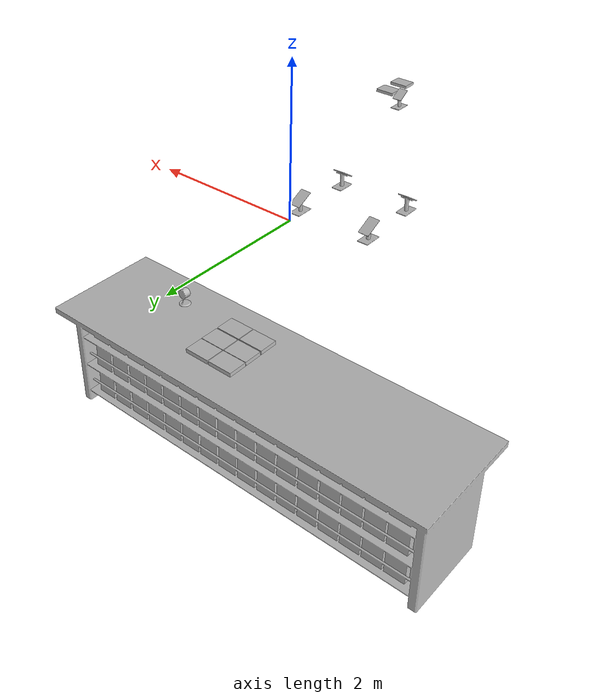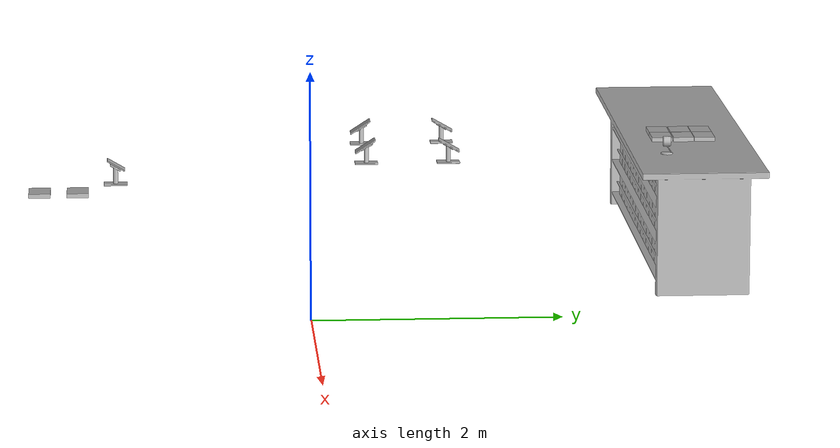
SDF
<sdf version="1.7">
 <world name="default">
  <model name="BookE_01_006">
   <frame name="aws_robomaker_retail_BookE_01::__model__" attached_to="aws_robomaker_retail_BookE_01::link">
    <pose relative_to="__model__">0 0 0 0 -0 0</pose>
   </frame>
   <link name="aws_robomaker_retail_BookE_01::link">
    <inertial>
     <mass>1</mass>
     <inertia><ixy>0</ixy><ixz>0</ixz><iyz>0</iyz><ixx>0.0666</ixx><iyy>0.0346</iyy><izz>0.0986</izz></inertia>
    </inertial>
    <collision name="collision">
     <geometry>
      <mesh>
       <uri>model://aws_robomaker_retail_BookE_01/meshes/aws_BookE_01_collision.DAE</uri>
       <scale>1 1 1</scale>
      </mesh>
     </geometry>
    </collision>
    <visual name="visual">
     <geometry>
      <mesh><uri>model://aws_robomaker_retail_BookE_01/meshes/aws_BookE_01_visual.DAE</uri></mesh>
     </geometry>
    </visual>
    <pose relative_to="aws_robomaker_retail_BookE_01::__model__">0 0 0 0 -0 0</pose>
   </link>
   <static>1</static>
   <pose>-1.88942 3.34639 1.05494 0 -0 1.56816</pose>
  </model>
  <model name="BookE_01_007">
   <frame name="aws_robomaker_retail_BookE_01::__model__" attached_to="aws_robomaker_retail_BookE_01::link">
    <pose relative_to="__model__">0 0 0 0 -0 0</pose>
   </frame>
   <link name="aws_robomaker_retail_BookE_01::link">
    <inertial>
     <mass>1</mass>
     <inertia><ixy>0</ixy><ixz>0</ixz><iyz>0</iyz><ixx>0.0666</ixx><iyy>0.0346</iyy><izz>0.0986</izz></inertia>
    </inertial>
    <collision name="collision">
     <geometry>
      <mesh>
       <uri>model://aws_robomaker_retail_BookE_01/meshes/aws_BookE_01_collision.DAE</uri>
       <scale>1 1 1</scale>
      </mesh>
     </geometry>
    </collision>
    <visual name="visual">
     <geometry>
      <mesh><uri>model://aws_robomaker_retail_BookE_01/meshes/aws_BookE_01_visual.DAE</uri></mesh>
     </geometry>
    </visual>
    <pose relative_to="aws_robomaker_retail_BookE_01::__model__">0 0 0 0 -0 0</pose>
   </link>
   <static>1</static>
   <pose>-2.12373 3.34639 1.05494 0 -0 1.56816</pose>
  </model>
  <model name="BookE_01_014">
   <frame name="aws_robomaker_retail_BookE_01::__model__" attached_to="aws_robomaker_retail_BookE_01::link">
    <pose relative_to="__model__">0 0 0 0 -0 0</pose>
   </frame>
   <link name="aws_robomaker_retail_BookE_01::link">
    <inertial>
     <mass>1</mass>
     <inertia><ixy>0</ixy><ixz>0</ixz><iyz>0</iyz><ixx>0.0666</ixx><iyy>0.0346</iyy><izz>0.0986</izz></inertia>
    </inertial>
    <collision name="collision">
     <geometry>
      <mesh>
       <uri>model://aws_robomaker_retail_BookE_01/meshes/aws_BookE_01_collision.DAE</uri>
       <scale>1 1 1</scale>
      </mesh>
     </geometry>
    </collision>
    <visual name="visual">
     <geometry>
      <mesh><uri>model://aws_robomaker_retail_BookE_01/meshes/aws_BookE_01_visual.DAE</uri></mesh>
     </geometry>
    </visual>
    <pose relative_to="aws_robomaker_retail_BookE_01::__model__">0 0 0 0 -0 0</pose>
   </link>
   <static>1</static>
   <pose>-1.88942 2.99369 1.05494 0 -0 1.56816</pose>
  </model>
  <model name="BookE_01_015">
   <frame name="aws_robomaker_retail_BookE_01::__model__" attached_to="aws_robomaker_retail_BookE_01::link">
    <pose relative_to="__model__">0 0 0 0 -0 0</pose>
   </frame>
   <link name="aws_robomaker_retail_BookE_01::link">
    <inertial>
     <mass>1</mass>
     <inertia><ixy>0</ixy><ixz>0</ixz><iyz>0</iyz><ixx>0.0666</ixx><iyy>0.0346</iyy><izz>0.0986</izz></inertia>
    </inertial>
    <collision name="collision">
     <geometry>
      <mesh>
       <uri>model://aws_robomaker_retail_BookE_01/meshes/aws_BookE_01_collision.DAE</uri>
       <scale>1 1 1</scale>
      </mesh>
     </geometry>
    </collision>
    <visual name="visual">
     <geometry>
      <mesh><uri>model://aws_robomaker_retail_BookE_01/meshes/aws_BookE_01_visual.DAE</uri></mesh>
     </geometry>
    </visual>
    <pose relative_to="aws_robomaker_retail_BookE_01::__model__">0 0 0 0 -0 0</pose>
   </link>
   <static>1</static>
   <pose>-2.12373 2.99369 1.05494 0 -0 1.56816</pose>
  </model>
  <model name="BookE_01_017">
   <frame name="aws_robomaker_retail_BookE_01::__model__" attached_to="aws_robomaker_retail_BookE_01::link">
    <pose relative_to="__model__">0 0 0 0 -0 0</pose>
   </frame>
   <link name="aws_robomaker_retail_BookE_01::link">
    <inertial>
     <mass>1</mass>
     <inertia><ixy>0</ixy><ixz>0</ixz><iyz>0</iyz><ixx>0.0666</ixx><iyy>0.0346</iyy><izz>0.0986</izz></inertia>
    </inertial>
    <collision name="collision">
     <geometry>
      <mesh>
       <uri>model://aws_robomaker_retail_BookE_01/meshes/aws_BookE_01_collision.DAE</uri>
       <scale>1 1 1</scale>
      </mesh>
     </geometry>
    </collision>
    <visual name="visual">
     <geometry>
      <mesh><uri>model://aws_robomaker_retail_BookE_01/meshes/aws_BookE_01_visual.DAE</uri></mesh>
     </geometry>
    </visual>
    <pose relative_to="aws_robomaker_retail_BookE_01::__model__">0 0 0 0 -0 0</pose>
   </link>
   <static>1</static>
   <pose>-1.88942 3.17292 1.05494 0 -0 1.56816</pose>
  </model>
  <model name="BookE_01_018">
   <frame name="aws_robomaker_retail_BookE_01::__model__" attached_to="aws_robomaker_retail_BookE_01::link">
    <pose relative_to="__model__">0 0 0 0 -0 0</pose>
   </frame>
   <link name="aws_robomaker_retail_BookE_01::link">
    <inertial>
     <mass>1</mass>
     <inertia><ixy>0</ixy><ixz>0</ixz><iyz>0</iyz><ixx>0.0666</ixx><iyy>0.0346</iyy><izz>0.0986</izz></inertia>
    </inertial>
    <collision name="collision">
     <geometry>
      <mesh>
       <uri>model://aws_robomaker_retail_BookE_01/meshes/aws_BookE_01_collision.DAE</uri>
       <scale>1 1 1</scale>
      </mesh>
     </geometry>
    </collision>
    <visual name="visual">
     <geometry>
      <mesh><uri>model://aws_robomaker_retail_BookE_01/meshes/aws_BookE_01_visual.DAE</uri></mesh>
     </geometry>
    </visual>
    <pose relative_to="aws_robomaker_retail_BookE_01::__model__">0 0 0 0 -0 0</pose>
   </link>
   <static>1</static>
   <pose>-2.12373 3.17292 1.05494 0 -0 1.56816</pose>
  </model>
  <model name="BookE_01_028">
   <frame name="aws_robomaker_retail_BookE_01::__model__" attached_to="aws_robomaker_retail_BookE_01::link">
    <pose relative_to="__model__">0 0 0 0 -0 0</pose>
   </frame>
   <link name="aws_robomaker_retail_BookE_01::link">
    <inertial>
     <mass>1</mass>
     <inertia><ixy>0</ixy><ixz>0</ixz><iyz>0</iyz><ixx>0.0666</ixx><iyy>0.0346</iyy><izz>0.0986</izz></inertia>
    </inertial>
    <collision name="collision">
     <geometry>
      <mesh>
       <uri>model://aws_robomaker_retail_BookE_01/meshes/aws_BookE_01_collision.DAE</uri>
       <scale>1 1 1</scale>
      </mesh>
     </geometry>
    </collision>
    <visual name="visual">
     <geometry>
      <mesh><uri>model://aws_robomaker_retail_BookE_01/meshes/aws_BookE_01_visual.DAE</uri></mesh>
     </geometry>
    </visual>
    <pose relative_to="aws_robomaker_retail_BookE_01::__model__">0 0 0 0 -0 0</pose>
   </link>
   <static>1</static>
   <pose>-0.037898 -2.12862 1.05383 4e-06 -4e-06 -1.57338</pose>
  </model>
  <model name="BookE_01_029">
   <frame name="aws_robomaker_retail_BookE_01::__model__" attached_to="aws_robomaker_retail_BookE_01::link">
    <pose relative_to="__model__">0 0 0 0 -0 0</pose>
   </frame>
   <link name="aws_robomaker_retail_BookE_01::link">
    <inertial>
     <mass>1</mass>
     <inertia><ixy>0</ixy><ixz>0</ixz><iyz>0</iyz><ixx>0.0666</ixx><iyy>0.0346</iyy><izz>0.0986</izz></inertia>
    </inertial>
    <collision name="collision">
     <geometry>
      <mesh>
       <uri>model://aws_robomaker_retail_BookE_01/meshes/aws_BookE_01_collision.DAE</uri>
       <scale>1 1 1</scale>
      </mesh>
     </geometry>
    </collision>
    <visual name="visual">
     <geometry>
      <mesh><uri>model://aws_robomaker_retail_BookE_01/meshes/aws_BookE_01_visual.DAE</uri></mesh>
     </geometry>
    </visual>
    <pose relative_to="aws_robomaker_retail_BookE_01::__model__">0 0 0 0 -0 0</pose>
   </link>
   <static>1</static>
   <pose>-0.037926 -1.83039 1.05383 4e-06 -4e-06 -1.57338</pose>
  </model>
  <model name="SecurityCamera_01_001">
   <frame name="aws_robomaker_retail_SecurityCamera_01::__model__" attached_to="aws_robomaker_retail_SecurityCamera_01::link">
    <pose relative_to="__model__">0 0 0 0 -0 0</pose>
   </frame>
   <link name="aws_robomaker_retail_SecurityCamera_01::link">
    <inertial>
     <mass>1</mass>
     <inertia>
      <ixx>18.2222</ixx>
      <ixy>0</ixy>
      <ixz>0</ixz>
      <iyy>18.2222</iyy>
      <iyz>0</iyz>
      <izz>0.0018767</izz>
     </inertia>
    </inertial>
    <collision name="collision">
     <geometry>
      <mesh>
       <uri>model://aws_robomaker_retail_SecurityCamera_01/meshes/aws_SecurityCamera_01_collision.DAE</uri>
       <scale>1 1 1</scale>
      </mesh>
     </geometry>
    </collision>
    <visual name="visual">
     <geometry>
      <mesh><uri>model://aws_robomaker_retail_SecurityCamera_01/meshes/aws_SecurityCamera_01_visual.DAE</uri></mesh>
     </geometry>
    </visual>
    <pose relative_to="aws_robomaker_retail_SecurityCamera_01::__model__">0 0 0 0 -0 0</pose>
   </link>
   <pose>-1.3088 2.97373 1.03669 0.000125 -1e-05 -0.011793</pose>
  </model>
  <model name="DeskA_01_001">
   <frame name="aws_robomaker_retail_DeskA_01::__model__" attached_to="aws_robomaker_retail_DeskA_01::link">
    <pose relative_to="__model__">0 0 0 0 -0 0</pose>
   </frame>
   <link name="aws_robomaker_retail_DeskA_01::link">
    <inertial>
     <mass>20</mass>
     <inertia><ixx>3.49717</ixx><ixy>0</ixy><ixz>0</ixz><iyy>23.5599</iyy><iyz>0</iyz><izz>23.5702</izz></inertia>
    </inertial>
    <collision name="collision">
     <geometry>
      <mesh>
       <uri>model://aws_robomaker_retail_DeskA_01/meshes/aws_DeskA_01_collision.DAE</uri>
       <scale>1 1 1</scale>
      </mesh>
     </geometry>
    </collision>
    <visual name="visual">
     <geometry>
      <mesh><uri>model://aws_robomaker_retail_DeskA_01/meshes/aws_DeskA_01_visual.DAE</uri></mesh>
     </geometry>
    </visual>
    <pose relative_to="aws_robomaker_retail_DeskA_01::__model__">0 0 0 0 -0 0</pose>
   </link>
   <static>1</static>
   <pose>-2.34069 3.20012 0.014921 0.000124 -1e-05 0.000376</pose>
  </model>
  <model name="TabletB_01_001">
   <frame name="aws_robomaker_retail_TabletB_01::__model__" attached_to="aws_robomaker_retail_TabletB_01::link">
    <pose relative_to="__model__">0 0 0 0 -0 0</pose>
   </frame>
   <link name="aws_robomaker_retail_TabletB_01::link">
    <inertial>
     <mass>0.161</mass>
     <inertia>
      <ixx>0.346954</ixx>
      <ixy>0</ixy>
      <ixz>0</ixz>
      <iyy>0.177288</iyy>
      <iyz>0</iyz>
      <izz>0.521826</izz>
     </inertia>
    </inertial>
    <collision name="collision">
     <geometry>
      <mesh>
       <uri>model://aws_robomaker_retail_TabletB_01/meshes/aws_TabletB_01_collision.DAE</uri>
       <scale>1 1 1</scale>
      </mesh>
     </geometry>
    </collision>
    <visual name="visual">
     <geometry>
      <mesh><uri>model://aws_robomaker_retail_TabletB_01/meshes/aws_TabletB_01_visual.DAE</uri></mesh>
     </geometry>
    </visual>
    <pose relative_to="aws_robomaker_retail_TabletB_01::__model__">0 0 0 0 -0 0</pose>
   </link>
   <static>1</static>
   <pose>-0.402839 -1.53076 1.19225 0.534314 -0.007303 -3.12504</pose>
  </model>
  <model name="Tablet_01_001">
   <frame name="aws_robomaker_retail_Tablet_01::__model__" attached_to="aws_robomaker_retail_Tablet_01::link">
    <pose relative_to="__model__">0 0 0 0 -0 0</pose>
   </frame>
   <link name="aws_robomaker_retail_Tablet_01::link">
    <inertial>
     <mass>0.5</mass>
     <inertia><ixx>0.035652</ixx><ixy>0</ixy><ixz>0</ixz><iyy>0.01</iyy><iyz>0</iyz><izz>0.041207</izz></inertia>
    </inertial>
    <collision name="collision">
     <geometry>
      <mesh>
       <uri>model://aws_robomaker_retail_Tablet_01/meshes/aws_Tablet_01_collision.DAE</uri>
       <scale>1 1 1</scale>
      </mesh>
     </geometry>
    </collision>
    <visual name="visual">
     <geometry>
      <mesh><uri>model://aws_robomaker_retail_Tablet_01/meshes/aws_Tablet_01_visual.DAE</uri></mesh>
     </geometry>
    </visual>
    <pose relative_to="aws_robomaker_retail_Tablet_01::__model__">0 0 0 0 -0 0</pose>
   </link>
   <static>1</static>
   <pose>-1.8461 0.489109 1.18055 0.579329 0.041534 -0.007936</pose>
  </model>
  <model name="Tablet_01_003">
   <frame name="aws_robomaker_retail_Tablet_01::__model__" attached_to="aws_robomaker_retail_Tablet_01::link">
    <pose relative_to="__model__">0 0 0 0 -0 0</pose>
   </frame>
   <link name="aws_robomaker_retail_Tablet_01::link">
    <inertial>
     <mass>0.5</mass>
     <inertia><ixx>0.035652</ixx><ixy>0</ixy><ixz>0</ixz><iyy>0.01</iyy><iyz>0</iyz><izz>0.041207</izz></inertia>
    </inertial>
    <collision name="collision">
     <geometry>
      <mesh>
       <uri>model://aws_robomaker_retail_Tablet_01/meshes/aws_Tablet_01_collision.DAE</uri>
       <scale>1 1 1</scale>
      </mesh>
     </geometry>
    </collision>
    <visual name="visual">
     <geometry>
      <mesh><uri>model://aws_robomaker_retail_Tablet_01/meshes/aws_Tablet_01_visual.DAE</uri></mesh>
     </geometry>
    </visual>
    <pose relative_to="aws_robomaker_retail_Tablet_01::__model__">0 0 0 0 -0 0</pose>
   </link>
   <static>1</static>
   <pose>-1.06927 0.489109 1.18055 0.579329 0.041534 -0.007936</pose>
  </model>
  <model name="Tablet_01_005">
   <frame name="aws_robomaker_retail_Tablet_01::__model__" attached_to="aws_robomaker_retail_Tablet_01::link">
    <pose relative_to="__model__">0 0 0 0 -0 0</pose>
   </frame>
   <link name="aws_robomaker_retail_Tablet_01::link">
    <inertial>
     <mass>0.5</mass>
     <inertia><ixx>0.035652</ixx><ixy>0</ixy><ixz>0</ixz><iyy>0.01</iyy><iyz>0</iyz><izz>0.041207</izz></inertia>
    </inertial>
    <collision name="collision">
     <geometry>
      <mesh>
       <uri>model://aws_robomaker_retail_Tablet_01/meshes/aws_Tablet_01_collision.DAE</uri>
       <scale>1 1 1</scale>
      </mesh>
     </geometry>
    </collision>
    <visual name="visual">
     <geometry>
      <mesh><uri>model://aws_robomaker_retail_Tablet_01/meshes/aws_Tablet_01_visual.DAE</uri></mesh>
     </geometry>
    </visual>
    <pose relative_to="aws_robomaker_retail_Tablet_01::__model__">0 0 0 0 -0 0</pose>
   </link>
   <static>1</static>
   <pose>-1.07268 1.16382 1.17789 0.513308 -1e-06 3.11006</pose>
  </model>
  <model name="Tablet_01_006">
   <frame name="aws_robomaker_retail_Tablet_01::__model__" attached_to="aws_robomaker_retail_Tablet_01::link">
    <pose relative_to="__model__">0 0 0 0 -0 0</pose>
   </frame>
   <link name="aws_robomaker_retail_Tablet_01::link">
    <inertial>
     <mass>0.5</mass>
     <inertia><ixx>0.035652</ixx><ixy>0</ixy><ixz>0</ixz><iyy>0.01</iyy><iyz>0</iyz><izz>0.041207</izz></inertia>
    </inertial>
    <collision name="collision">
     <geometry>
      <mesh>
       <uri>model://aws_robomaker_retail_Tablet_01/meshes/aws_Tablet_01_collision.DAE</uri>
       <scale>1 1 1</scale>
      </mesh>
     </geometry>
    </collision>
    <visual name="visual">
     <geometry>
      <mesh><uri>model://aws_robomaker_retail_Tablet_01/meshes/aws_Tablet_01_visual.DAE</uri></mesh>
     </geometry>
    </visual>
    <pose relative_to="aws_robomaker_retail_Tablet_01::__model__">0 0 0 0 -0 0</pose>
   </link>
   <static>1</static>
   <pose>-1.87669 1.16382 1.17789 0.513308 -1e-06 3.11006</pose>
  </model>
  <model name="Holder_01_004">
   <frame name="aws_robomaker_retail_Holder_01::__model__" attached_to="aws_robomaker_retail_Holder_01::link">
    <pose relative_to="__model__">0 0 0 0 -0 0</pose>
   </frame>
   <link name="aws_robomaker_retail_Holder_01::link">
    <inertial><mass>1</mass></inertial>
    <collision name="collision">
     <geometry>
      <mesh>
       <uri>model://aws_robomaker_retail_Holder_01/meshes/aws_Holder_01_collision.DAE</uri>
       <scale>1 1 1</scale>
      </mesh>
     </geometry>
    </collision>
    <visual name="visual">
     <geometry>
      <mesh><uri>model://aws_robomaker_retail_Holder_01/meshes/aws_Holder_01_visual.DAE</uri></mesh>
     </geometry>
    </visual>
    <pose relative_to="aws_robomaker_retail_Holder_01::__model__">0 0 0 0 -0 0</pose>
   </link>
   <static>1</static>
   <pose>-0.399425 -1.53224 1.03776 0 0 -3.13015</pose>
  </model>
  <model name="Holder_01_005">
   <frame name="aws_robomaker_retail_Holder_01::__model__" attached_to="aws_robomaker_retail_Holder_01::link">
    <pose relative_to="__model__">0 0 0 0 -0 0</pose>
   </frame>
   <link name="aws_robomaker_retail_Holder_01::link">
    <inertial><mass>1</mass></inertial>
    <collision name="collision">
     <geometry>
      <mesh>
       <uri>model://aws_robomaker_retail_Holder_01/meshes/aws_Holder_01_collision.DAE</uri>
       <scale>1 1 1</scale>
      </mesh>
     </geometry>
    </collision>
    <visual name="visual">
     <geometry>
      <mesh><uri>model://aws_robomaker_retail_Holder_01/meshes/aws_Holder_01_visual.DAE</uri></mesh>
     </geometry>
    </visual>
    <pose relative_to="aws_robomaker_retail_Holder_01::__model__">0 0 0 0 -0 0</pose>
   </link>
   <static>1</static>
   <pose>-1.84662 0.495602 1.03776 0 -0 0</pose>
  </model>
  <model name="Holder_01_007">
   <frame name="aws_robomaker_retail_Holder_01::__model__" attached_to="aws_robomaker_retail_Holder_01::link">
    <pose relative_to="__model__">0 0 0 0 -0 0</pose>
   </frame>
   <link name="aws_robomaker_retail_Holder_01::link">
    <inertial><mass>1</mass></inertial>
    <collision name="collision">
     <geometry>
      <mesh>
       <uri>model://aws_robomaker_retail_Holder_01/meshes/aws_Holder_01_collision.DAE</uri>
       <scale>1 1 1</scale>
      </mesh>
     </geometry>
    </collision>
    <visual name="visual">
     <geometry>
      <mesh><uri>model://aws_robomaker_retail_Holder_01/meshes/aws_Holder_01_visual.DAE</uri></mesh>
     </geometry>
    </visual>
    <pose relative_to="aws_robomaker_retail_Holder_01::__model__">0 0 0 0 -0 0</pose>
   </link>
   <static>1</static>
   <pose>-1.07242 0.495602 1.03776 0 -0 0</pose>
  </model>
  <model name="Holder_01_009">
   <frame name="aws_robomaker_retail_Holder_01::__model__" attached_to="aws_robomaker_retail_Holder_01::link">
    <pose relative_to="__model__">0 0 0 0 -0 0</pose>
   </frame>
   <link name="aws_robomaker_retail_Holder_01::link">
    <inertial><mass>1</mass></inertial>
    <collision name="collision">
     <geometry>
      <mesh>
       <uri>model://aws_robomaker_retail_Holder_01/meshes/aws_Holder_01_collision.DAE</uri>
       <scale>1 1 1</scale>
      </mesh>
     </geometry>
    </collision>
    <visual name="visual">
     <geometry>
      <mesh><uri>model://aws_robomaker_retail_Holder_01/meshes/aws_Holder_01_visual.DAE</uri></mesh>
     </geometry>
    </visual>
    <pose relative_to="aws_robomaker_retail_Holder_01::__model__">0 0 0 0 -0 0</pose>
   </link>
   <static>1</static>
   <pose>-1.07293 1.16083 1.03776 0 0 -3.13015</pose>
  </model>
  <model name="Holder_01_010">
   <frame name="aws_robomaker_retail_Holder_01::__model__" attached_to="aws_robomaker_retail_Holder_01::link">
    <pose relative_to="__model__">0 0 0 0 -0 0</pose>
   </frame>
   <link name="aws_robomaker_retail_Holder_01::link">
    <inertial><mass>1</mass></inertial>
    <collision name="collision">
     <geometry>
      <mesh>
       <uri>model://aws_robomaker_retail_Holder_01/meshes/aws_Holder_01_collision.DAE</uri>
       <scale>1 1 1</scale>
      </mesh>
     </geometry>
    </collision>
    <visual name="visual">
     <geometry>
      <mesh><uri>model://aws_robomaker_retail_Holder_01/meshes/aws_Holder_01_visual.DAE</uri></mesh>
     </geometry>
    </visual>
    <pose relative_to="aws_robomaker_retail_Holder_01::__model__">0 0 0 0 -0 0</pose>
   </link>
   <static>1</static>
   <pose>-1.87489 1.16083 1.03776 0 0 -3.13015</pose>
  </model>
 </world>
</sdf>
